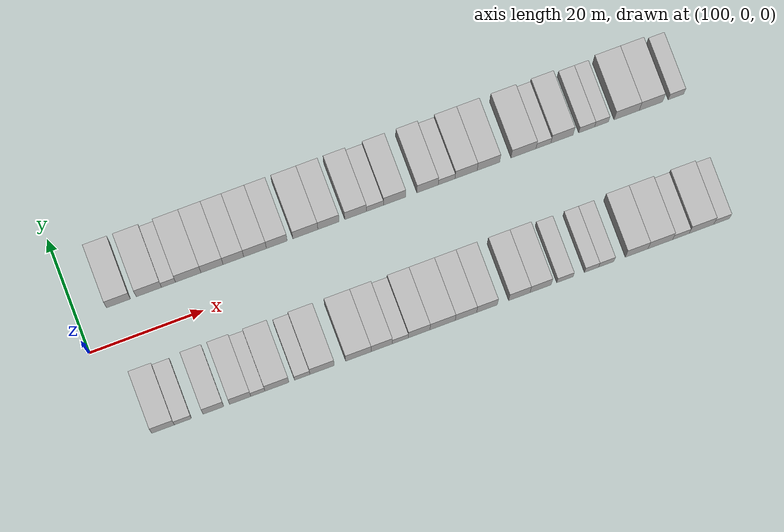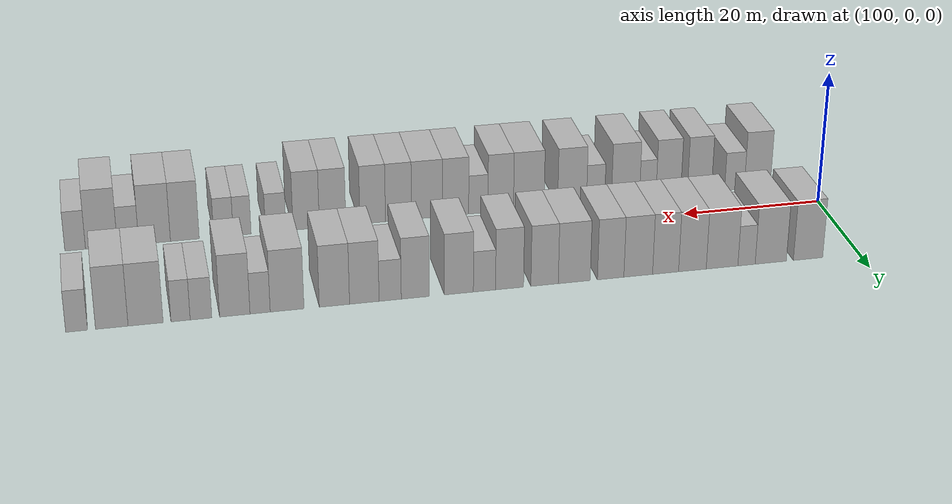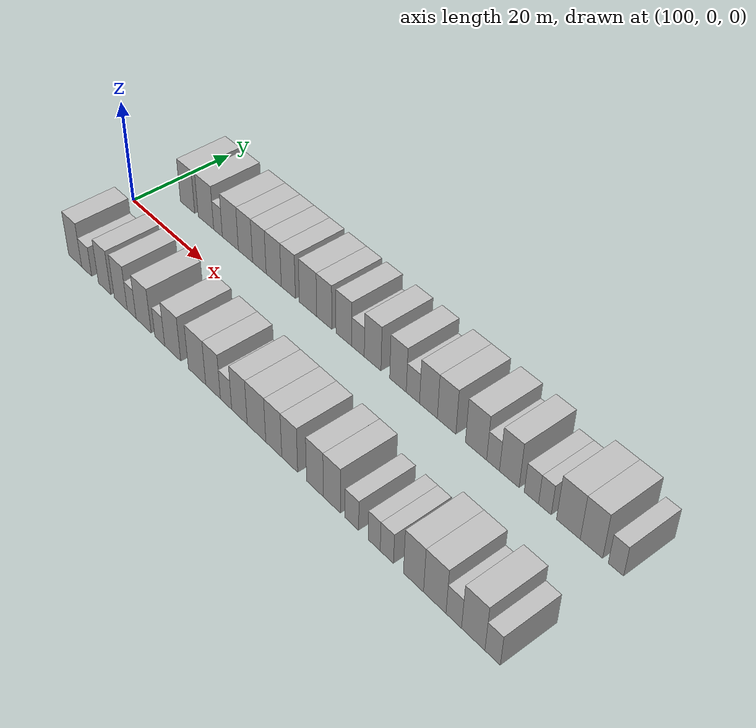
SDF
<sdf version="1.6">
 <world name="default">
  <model name="building_26">
   <static>1</static>
   <pose>107.3547 11.0000 0 0.000000 0.000000 1.570796</pose>
   <link name="link">
    <pose>0 0 4.50 0 0 0</pose>
    <collision name="collision"><geometry><box><size>10.0000 4.1900 9.0000</size></box></geometry></collision>
    <visual name="visual">
     <cast_shadows>0</cast_shadows>
     <geometry><box><size>10.0000 4.1900 9.0000</size></box></geometry>
     <material>
      <script>
       <uri>model://HANNAS_wall/materials/scripts</uri>
       <uri>model://HANNAS_wall/materials/textures</uri>
       <name>vrc/HANNAS_wall</name>
      </script>
     </material>
    </visual>
   </link>
  </model>
  <model name="building_27">
   <static>1</static>
   <pose>112.6648 11.0000 0 0.000000 0.000000 1.570796</pose>
   <link name="link">
    <pose>0 0 4.50 0 0 0</pose>
    <collision name="collision"><geometry><box><size>10.0000 4.4302 9.0000</size></box></geometry></collision>
    <visual name="visual">
     <cast_shadows>0</cast_shadows>
     <geometry><box><size>10.0000 4.4302 9.0000</size></box></geometry>
     <material>
      <script>
       <uri>model://HANNAS_wall/materials/scripts</uri>
       <uri>model://HANNAS_wall/materials/textures</uri>
       <name>vrc/HANNAS_wall</name>
      </script>
     </material>
    </visual>
   </link>
  </model>
  <model name="building_28">
   <static>1</static>
   <pose>116.1045 11.0000 0 0.000000 0.000000 1.570796</pose>
   <link name="link">
    <pose>0 0 3.00 0 0 0</pose>
    <collision name="collision"><geometry><box><size>10.0000 2.4492 6.0000</size></box></geometry></collision>
    <visual name="visual">
     <cast_shadows>0</cast_shadows>
     <geometry><box><size>10.0000 2.4492 6.0000</size></box></geometry>
     <material>
      <script>
       <uri>model://HANNAS_wall/materials/scripts</uri>
       <uri>model://HANNAS_wall/materials/textures</uri>
       <name>vrc/HANNAS_wall</name>
      </script>
     </material>
    </visual>
   </link>
  </model>
  <model name="building_29">
   <static>1</static>
   <pose>119.5563 11.0000 0 0.000000 0.000000 1.570796</pose>
   <link name="link">
    <pose>0 0 4.50 0 0 0</pose>
    <collision name="collision"><geometry><box><size>10.0000 4.4545 9.0000</size></box></geometry></collision>
    <visual name="visual">
     <cast_shadows>0</cast_shadows>
     <geometry><box><size>10.0000 4.4545 9.0000</size></box></geometry>
     <material>
      <script>
       <uri>model://HANNAS_wall/materials/scripts</uri>
       <uri>model://HANNAS_wall/materials/textures</uri>
       <name>vrc/HANNAS_wall</name>
      </script>
     </material>
    </visual>
   </link>
  </model>
  <model name="building_30">
   <static>1</static>
   <pose>123.7197 11.0000 0 0.000000 0.000000 1.570796</pose>
   <link name="link">
    <pose>0 0 4.50 0 0 0</pose>
    <collision name="collision"><geometry><box><size>10.0000 3.8723 9.0000</size></box></geometry></collision>
    <visual name="visual">
     <cast_shadows>0</cast_shadows>
     <geometry><box><size>10.0000 3.8723 9.0000</size></box></geometry>
     <material>
      <script>
       <uri>model://HANNAS_wall/materials/scripts</uri>
       <uri>model://HANNAS_wall/materials/textures</uri>
       <name>vrc/HANNAS_wall</name>
      </script>
     </material>
    </visual>
   </link>
  </model>
  <model name="building_31">
   <static>1</static>
   <pose>127.4697 11.0000 0 0.000000 0.000000 1.570796</pose>
   <link name="link">
    <pose>0 0 4.50 0 0 0</pose>
    <collision name="collision"><geometry><box><size>10.0000 3.6276 9.0000</size></box></geometry></collision>
    <visual name="visual">
     <cast_shadows>0</cast_shadows>
     <geometry><box><size>10.0000 3.6276 9.0000</size></box></geometry>
     <material>
      <script>
       <uri>model://HANNAS_wall/materials/scripts</uri>
       <uri>model://HANNAS_wall/materials/textures</uri>
       <name>vrc/HANNAS_wall</name>
      </script>
     </material>
    </visual>
   </link>
  </model>
  <model name="building_32">
   <static>1</static>
   <pose>131.2735 11.0000 0 0.000000 0.000000 1.570796</pose>
   <link name="link">
    <pose>0 0 4.50 0 0 0</pose>
    <collision name="collision"><geometry><box><size>10.0000 3.9799 9.0000</size></box></geometry></collision>
    <visual name="visual">
     <cast_shadows>0</cast_shadows>
     <geometry><box><size>10.0000 3.9799 9.0000</size></box></geometry>
     <material>
      <script>
       <uri>model://HANNAS_wall/materials/scripts</uri>
       <uri>model://HANNAS_wall/materials/textures</uri>
       <name>vrc/HANNAS_wall</name>
      </script>
     </material>
    </visual>
   </link>
  </model>
  <model name="building_33">
   <static>1</static>
   <pose>135.0868 11.0000 0 0.000000 0.000000 1.570796</pose>
   <link name="link">
    <pose>0 0 4.50 0 0 0</pose>
    <collision name="collision"><geometry><box><size>10.0000 3.6468 9.0000</size></box></geometry></collision>
    <visual name="visual">
     <cast_shadows>0</cast_shadows>
     <geometry><box><size>10.0000 3.6468 9.0000</size></box></geometry>
     <material>
      <script>
       <uri>model://HANNAS_wall/materials/scripts</uri>
       <uri>model://HANNAS_wall/materials/textures</uri>
       <name>vrc/HANNAS_wall</name>
      </script>
     </material>
    </visual>
   </link>
  </model>
  <model name="building_34">
   <static>1</static>
   <pose>140.0975 11.0000 0 0.000000 0.000000 1.570796</pose>
   <link name="link">
    <pose>0 0 4.50 0 0 0</pose>
    <collision name="collision"><geometry><box><size>10.0000 4.3745 9.0000</size></box></geometry></collision>
    <visual name="visual">
     <cast_shadows>0</cast_shadows>
     <geometry><box><size>10.0000 4.3745 9.0000</size></box></geometry>
     <material>
      <script>
       <uri>model://HANNAS_wall/materials/scripts</uri>
       <uri>model://HANNAS_wall/materials/textures</uri>
       <name>vrc/HANNAS_wall</name>
      </script>
     </material>
    </visual>
   </link>
  </model>
  <model name="building_35">
   <static>1</static>
   <pose>144.1498 11.0000 0 0.000000 0.000000 1.570796</pose>
   <link name="link">
    <pose>0 0 4.50 0 0 0</pose>
    <collision name="collision"><geometry><box><size>10.0000 3.7302 9.0000</size></box></geometry></collision>
    <visual name="visual">
     <cast_shadows>0</cast_shadows>
     <geometry><box><size>10.0000 3.7302 9.0000</size></box></geometry>
     <material>
      <script>
       <uri>model://HANNAS_wall/materials/scripts</uri>
       <uri>model://HANNAS_wall/materials/textures</uri>
       <name>vrc/HANNAS_wall</name>
      </script>
     </material>
    </visual>
   </link>
  </model>
  <model name="building_36">
   <static>1</static>
   <pose>148.9083 11.0000 0 0.000000 0.000000 1.570796</pose>
   <link name="link">
    <pose>0 0 4.50 0 0 0</pose>
    <collision name="collision"><geometry><box><size>10.0000 3.7869 9.0000</size></box></geometry></collision>
    <visual name="visual">
     <cast_shadows>0</cast_shadows>
     <geometry><box><size>10.0000 3.7869 9.0000</size></box></geometry>
     <material>
      <script>
       <uri>model://HANNAS_wall/materials/scripts</uri>
       <uri>model://HANNAS_wall/materials/textures</uri>
       <name>vrc/HANNAS_wall</name>
      </script>
     </material>
    </visual>
   </link>
  </model>
  <model name="building_37">
   <static>1</static>
   <pose>152.3015 11.0000 0 0.000000 0.000000 1.570796</pose>
   <link name="link">
    <pose>0 0 3.00 0 0 0</pose>
    <collision name="collision"><geometry><box><size>10.0000 2.9994 6.0000</size></box></geometry></collision>
    <visual name="visual">
     <cast_shadows>0</cast_shadows>
     <geometry><box><size>10.0000 2.9994 6.0000</size></box></geometry>
     <material>
      <script>
       <uri>model://HANNAS_wall/materials/scripts</uri>
       <uri>model://HANNAS_wall/materials/textures</uri>
       <name>vrc/HANNAS_wall</name>
      </script>
     </material>
    </visual>
   </link>
  </model>
  <model name="building_38">
   <static>1</static>
   <pose>155.7456 11.0000 0 0.000000 0.000000 1.570796</pose>
   <link name="link">
    <pose>0 0 4.50 0 0 0</pose>
    <collision name="collision"><geometry><box><size>10.0000 3.8888 9.0000</size></box></geometry></collision>
    <visual name="visual">
     <cast_shadows>0</cast_shadows>
     <geometry><box><size>10.0000 3.8888 9.0000</size></box></geometry>
     <material>
      <script>
       <uri>model://HANNAS_wall/materials/scripts</uri>
       <uri>model://HANNAS_wall/materials/textures</uri>
       <name>vrc/HANNAS_wall</name>
      </script>
     </material>
    </visual>
   </link>
  </model>
  <model name="building_39">
   <static>1</static>
   <pose>161.5662 11.0000 0 0.000000 0.000000 1.570796</pose>
   <link name="link">
    <pose>0 0 4.50 0 0 0</pose>
    <collision name="collision"><geometry><box><size>10.0000 3.7523 9.0000</size></box></geometry></collision>
    <visual name="visual">
     <cast_shadows>0</cast_shadows>
     <geometry><box><size>10.0000 3.7523 9.0000</size></box></geometry>
     <material>
      <script>
       <uri>model://HANNAS_wall/materials/scripts</uri>
       <uri>model://HANNAS_wall/materials/textures</uri>
       <name>vrc/HANNAS_wall</name>
      </script>
     </material>
    </visual>
   </link>
  </model>
  <model name="building_40">
   <static>1</static>
   <pose>164.9139 11.0000 0 0.000000 0.000000 1.570796</pose>
   <link name="link">
    <pose>0 0 3.00 0 0 0</pose>
    <collision name="collision"><geometry><box><size>10.0000 2.9432 6.0000</size></box></geometry></collision>
    <visual name="visual">
     <cast_shadows>0</cast_shadows>
     <geometry><box><size>10.0000 2.9432 6.0000</size></box></geometry>
     <material>
      <script>
       <uri>model://HANNAS_wall/materials/scripts</uri>
       <uri>model://HANNAS_wall/materials/textures</uri>
       <name>vrc/HANNAS_wall</name>
      </script>
     </material>
    </visual>
   </link>
  </model>
  <model name="building_41">
   <static>1</static>
   <pose>168.3362 11.0000 0 0.000000 0.000000 1.570796</pose>
   <link name="link">
    <pose>0 0 4.50 0 0 0</pose>
    <collision name="collision"><geometry><box><size>10.0000 3.9013 9.0000</size></box></geometry></collision>
    <visual name="visual">
     <cast_shadows>0</cast_shadows>
     <geometry><box><size>10.0000 3.9013 9.0000</size></box></geometry>
     <material>
      <script>
       <uri>model://HANNAS_wall/materials/scripts</uri>
       <uri>model://HANNAS_wall/materials/textures</uri>
       <name>vrc/HANNAS_wall</name>
      </script>
     </material>
    </visual>
   </link>
  </model>
  <model name="building_42">
   <static>1</static>
   <pose>172.2730 11.0000 0 0.000000 0.000000 1.570796</pose>
   <link name="link">
    <pose>0 0 4.50 0 0 0</pose>
    <collision name="collision"><geometry><box><size>10.0000 3.9724 9.0000</size></box></geometry></collision>
    <visual name="visual">
     <cast_shadows>0</cast_shadows>
     <geometry><box><size>10.0000 3.9724 9.0000</size></box></geometry>
     <material>
      <script>
       <uri>model://HANNAS_wall/materials/scripts</uri>
       <uri>model://HANNAS_wall/materials/textures</uri>
       <name>vrc/HANNAS_wall</name>
      </script>
     </material>
    </visual>
   </link>
  </model>
  <model name="building_43">
   <static>1</static>
   <pose>178.4589 11.0000 0 0.000000 0.000000 1.570796</pose>
   <link name="link">
    <pose>0 0 4.50 0 0 0</pose>
    <collision name="collision"><geometry><box><size>10.0000 4.3993 9.0000</size></box></geometry></collision>
    <visual name="visual">
     <cast_shadows>0</cast_shadows>
     <geometry><box><size>10.0000 4.3993 9.0000</size></box></geometry>
     <material>
      <script>
       <uri>model://HANNAS_wall/materials/scripts</uri>
       <uri>model://HANNAS_wall/materials/textures</uri>
       <name>vrc/HANNAS_wall</name>
      </script>
     </material>
    </visual>
   </link>
  </model>
  <model name="building_44">
   <static>1</static>
   <pose>181.9692 11.0000 0 0.000000 0.000000 1.570796</pose>
   <link name="link">
    <pose>0 0 3.00 0 0 0</pose>
    <collision name="collision"><geometry><box><size>10.0000 2.6214 6.0000</size></box></geometry></collision>
    <visual name="visual">
     <cast_shadows>0</cast_shadows>
     <geometry><box><size>10.0000 2.6214 6.0000</size></box></geometry>
     <material>
      <script>
       <uri>model://HANNAS_wall/materials/scripts</uri>
       <uri>model://HANNAS_wall/materials/textures</uri>
       <name>vrc/HANNAS_wall</name>
      </script>
     </material>
    </visual>
   </link>
  </model>
  <model name="building_45">
   <static>1</static>
   <pose>185.2407 11.0000 0 0.000000 0.000000 1.570796</pose>
   <link name="link">
    <pose>0 0 4.50 0 0 0</pose>
    <collision name="collision"><geometry><box><size>10.0000 3.9215 9.0000</size></box></geometry></collision>
    <visual name="visual">
     <cast_shadows>0</cast_shadows>
     <geometry><box><size>10.0000 3.9215 9.0000</size></box></geometry>
     <material>
      <script>
       <uri>model://HANNAS_wall/materials/scripts</uri>
       <uri>model://HANNAS_wall/materials/textures</uri>
       <name>vrc/HANNAS_wall</name>
      </script>
     </material>
    </visual>
   </link>
  </model>
  <model name="building_46">
   <static>1</static>
   <pose>189.5925 11.0000 0 0.000000 0.000000 1.570796</pose>
   <link name="link">
    <pose>0 0 3.00 0 0 0</pose>
    <collision name="collision"><geometry><box><size>10.0000 2.7821 6.0000</size></box></geometry></collision>
    <visual name="visual">
     <cast_shadows>0</cast_shadows>
     <geometry><box><size>10.0000 2.7821 6.0000</size></box></geometry>
     <material>
      <script>
       <uri>model://HANNAS_wall/materials/scripts</uri>
       <uri>model://HANNAS_wall/materials/textures</uri>
       <name>vrc/HANNAS_wall</name>
      </script>
     </material>
    </visual>
   </link>
  </model>
  <model name="building_47">
   <static>1</static>
   <pose>192.2112 11.0000 0 0.000000 0.000000 1.570796</pose>
   <link name="link">
    <pose>0 0 3.00 0 0 0</pose>
    <collision name="collision"><geometry><box><size>10.0000 2.4554 6.0000</size></box></geometry></collision>
    <visual name="visual">
     <cast_shadows>0</cast_shadows>
     <geometry><box><size>10.0000 2.4554 6.0000</size></box></geometry>
     <material>
      <script>
       <uri>model://HANNAS_wall/materials/scripts</uri>
       <uri>model://HANNAS_wall/materials/textures</uri>
       <name>vrc/HANNAS_wall</name>
      </script>
     </material>
    </visual>
   </link>
  </model>
  <model name="building_48">
   <static>1</static>
   <pose>196.6661 11.0000 0 0.000000 0.000000 1.570796</pose>
   <link name="link">
    <pose>0 0 4.50 0 0 0</pose>
    <collision name="collision"><geometry><box><size>10.0000 4.4544 9.0000</size></box></geometry></collision>
    <visual name="visual">
     <cast_shadows>0</cast_shadows>
     <geometry><box><size>10.0000 4.4544 9.0000</size></box></geometry>
     <material>
      <script>
       <uri>model://HANNAS_wall/materials/scripts</uri>
       <uri>model://HANNAS_wall/materials/textures</uri>
       <name>vrc/HANNAS_wall</name>
      </script>
     </material>
    </visual>
   </link>
  </model>
  <model name="building_49">
   <static>1</static>
   <pose>200.9505 11.0000 0 0.000000 0.000000 1.570796</pose>
   <link name="link">
    <pose>0 0 4.50 0 0 0</pose>
    <collision name="collision"><geometry><box><size>10.0000 4.1144 9.0000</size></box></geometry></collision>
    <visual name="visual">
     <cast_shadows>0</cast_shadows>
     <geometry><box><size>10.0000 4.1144 9.0000</size></box></geometry>
     <material>
      <script>
       <uri>model://HANNAS_wall/materials/scripts</uri>
       <uri>model://HANNAS_wall/materials/textures</uri>
       <name>vrc/HANNAS_wall</name>
      </script>
     </material>
    </visual>
   </link>
  </model>
  <model name="building_50">
   <static>1</static>
   <pose>205.3831 11.0000 0 0.000000 0.000000 1.570796</pose>
   <link name="link">
    <pose>0 0 3.00 0 0 0</pose>
    <collision name="collision"><geometry><box><size>10.0000 2.7508 6.0000</size></box></geometry></collision>
    <visual name="visual">
     <cast_shadows>0</cast_shadows>
     <geometry><box><size>10.0000 2.7508 6.0000</size></box></geometry>
     <material>
      <script>
       <uri>model://HANNAS_wall/materials/scripts</uri>
       <uri>model://HANNAS_wall/materials/textures</uri>
       <name>vrc/HANNAS_wall</name>
      </script>
     </material>
    </visual>
   </link>
  </model>
  <model name="building_75">
   <static>1</static>
   <pose>107.0767 -11.0000 0 0.000000 0.000000 1.570796</pose>
   <link name="link">
    <pose>0 0 4.50 0 0 0</pose>
    <collision name="collision"><geometry><box><size>10.0000 3.9585 9.0000</size></box></geometry></collision>
    <visual name="visual">
     <cast_shadows>0</cast_shadows>
     <geometry><box><size>10.0000 3.9585 9.0000</size></box></geometry>
     <material>
      <script>
       <uri>model://HANNAS_wall/materials/scripts</uri>
       <uri>model://HANNAS_wall/materials/textures</uri>
       <name>vrc/HANNAS_wall</name>
      </script>
     </material>
    </visual>
   </link>
  </model>
  <model name="building_76">
   <static>1</static>
   <pose>110.5516 -11.0000 0 0.000000 0.000000 1.570796</pose>
   <link name="link">
    <pose>0 0 3.00 0 0 0</pose>
    <collision name="collision"><geometry><box><size>10.0000 2.9915 6.0000</size></box></geometry></collision>
    <visual name="visual">
     <cast_shadows>0</cast_shadows>
     <geometry><box><size>10.0000 2.9915 6.0000</size></box></geometry>
     <material>
      <script>
       <uri>model://HANNAS_wall/materials/scripts</uri>
       <uri>model://HANNAS_wall/materials/textures</uri>
       <name>vrc/HANNAS_wall</name>
      </script>
     </material>
    </visual>
   </link>
  </model>
  <model name="building_77">
   <static>1</static>
   <pose>115.8667 -11.0000 0 0.000000 0.000000 1.570796</pose>
   <link name="link">
    <pose>0 0 4.50 0 0 0</pose>
    <collision name="collision"><geometry><box><size>10.0000 3.6387 9.0000</size></box></geometry></collision>
    <visual name="visual">
     <cast_shadows>0</cast_shadows>
     <geometry><box><size>10.0000 3.6387 9.0000</size></box></geometry>
     <material>
      <script>
       <uri>model://HANNAS_wall/materials/scripts</uri>
       <uri>model://HANNAS_wall/materials/textures</uri>
       <name>vrc/HANNAS_wall</name>
      </script>
     </material>
    </visual>
   </link>
  </model>
  <model name="building_78">
   <static>1</static>
   <pose>120.5418 -11.0000 0 0.000000 0.000000 1.570796</pose>
   <link name="link">
    <pose>0 0 4.50 0 0 0</pose>
    <collision name="collision"><geometry><box><size>10.0000 3.7113 9.0000</size></box></geometry></collision>
    <visual name="visual">
     <cast_shadows>0</cast_shadows>
     <geometry><box><size>10.0000 3.7113 9.0000</size></box></geometry>
     <material>
      <script>
       <uri>model://HANNAS_wall/materials/scripts</uri>
       <uri>model://HANNAS_wall/materials/textures</uri>
       <name>vrc/HANNAS_wall</name>
      </script>
     </material>
    </visual>
   </link>
  </model>
  <model name="building_79">
   <static>1</static>
   <pose>123.6278 -11.0000 0 0.000000 0.000000 1.570796</pose>
   <link name="link">
    <pose>0 0 3.00 0 0 0</pose>
    <collision name="collision"><geometry><box><size>10.0000 2.4608 6.0000</size></box></geometry></collision>
    <visual name="visual">
     <cast_shadows>0</cast_shadows>
     <geometry><box><size>10.0000 2.4608 6.0000</size></box></geometry>
     <material>
      <script>
       <uri>model://HANNAS_wall/materials/scripts</uri>
       <uri>model://HANNAS_wall/materials/textures</uri>
       <name>vrc/HANNAS_wall</name>
      </script>
     </material>
    </visual>
   </link>
  </model>
  <model name="building_80">
   <static>1</static>
   <pose>126.9496 -11.0000 0 0.000000 0.000000 1.570796</pose>
   <link name="link">
    <pose>0 0 4.50 0 0 0</pose>
    <collision name="collision"><geometry><box><size>10.0000 4.1827 9.0000</size></box></geometry></collision>
    <visual name="visual">
     <cast_shadows>0</cast_shadows>
     <geometry><box><size>10.0000 4.1827 9.0000</size></box></geometry>
     <material>
      <script>
       <uri>model://HANNAS_wall/materials/scripts</uri>
       <uri>model://HANNAS_wall/materials/textures</uri>
       <name>vrc/HANNAS_wall</name>
      </script>
     </material>
    </visual>
   </link>
  </model>
  <model name="building_81">
   <static>1</static>
   <pose>131.3849 -11.0000 0 0.000000 0.000000 1.570796</pose>
   <link name="link">
    <pose>0 0 3.00 0 0 0</pose>
    <collision name="collision"><geometry><box><size>10.0000 2.6879 6.0000</size></box></geometry></collision>
    <visual name="visual">
     <cast_shadows>0</cast_shadows>
     <geometry><box><size>10.0000 2.6879 6.0000</size></box></geometry>
     <material>
      <script>
       <uri>model://HANNAS_wall/materials/scripts</uri>
       <uri>model://HANNAS_wall/materials/textures</uri>
       <name>vrc/HANNAS_wall</name>
      </script>
     </material>
    </visual>
   </link>
  </model>
  <model name="building_82">
   <static>1</static>
   <pose>134.8555 -11.0000 0 0.000000 0.000000 1.570796</pose>
   <link name="link">
    <pose>0 0 4.50 0 0 0</pose>
    <collision name="collision"><geometry><box><size>10.0000 4.2533 9.0000</size></box></geometry></collision>
    <visual name="visual">
     <cast_shadows>0</cast_shadows>
     <geometry><box><size>10.0000 4.2533 9.0000</size></box></geometry>
     <material>
      <script>
       <uri>model://HANNAS_wall/materials/scripts</uri>
       <uri>model://HANNAS_wall/materials/textures</uri>
       <name>vrc/HANNAS_wall</name>
      </script>
     </material>
    </visual>
   </link>
  </model>
  <model name="building_83">
   <static>1</static>
   <pose>141.2164 -11.0000 0 0.000000 0.000000 1.570796</pose>
   <link name="link">
    <pose>0 0 4.50 0 0 0</pose>
    <collision name="collision"><geometry><box><size>10.0000 4.4686 9.0000</size></box></geometry></collision>
    <visual name="visual">
     <cast_shadows>0</cast_shadows>
     <geometry><box><size>10.0000 4.4686 9.0000</size></box></geometry>
     <material>
      <script>
       <uri>model://HANNAS_wall/materials/scripts</uri>
       <uri>model://HANNAS_wall/materials/textures</uri>
       <name>vrc/HANNAS_wall</name>
      </script>
     </material>
    </visual>
   </link>
  </model>
  <model name="building_84">
   <static>1</static>
   <pose>145.3041 -11.0000 0 0.000000 0.000000 1.570796</pose>
   <link name="link">
    <pose>0 0 4.50 0 0 0</pose>
    <collision name="collision"><geometry><box><size>10.0000 3.7066 9.0000</size></box></geometry></collision>
    <visual name="visual">
     <cast_shadows>0</cast_shadows>
     <geometry><box><size>10.0000 3.7066 9.0000</size></box></geometry>
     <material>
      <script>
       <uri>model://HANNAS_wall/materials/scripts</uri>
       <uri>model://HANNAS_wall/materials/textures</uri>
       <name>vrc/HANNAS_wall</name>
      </script>
     </material>
    </visual>
   </link>
  </model>
  <model name="building_85">
   <static>1</static>
   <pose>148.5587 -11.0000 0 0.000000 0.000000 1.570796</pose>
   <link name="link">
    <pose>0 0 3.00 0 0 0</pose>
    <collision name="collision"><geometry><box><size>10.0000 2.8027 6.0000</size></box></geometry></collision>
    <visual name="visual">
     <cast_shadows>0</cast_shadows>
     <geometry><box><size>10.0000 2.8027 6.0000</size></box></geometry>
     <material>
      <script>
       <uri>model://HANNAS_wall/materials/scripts</uri>
       <uri>model://HANNAS_wall/materials/textures</uri>
       <name>vrc/HANNAS_wall</name>
      </script>
     </material>
    </visual>
   </link>
  </model>
  <model name="building_86">
   <static>1</static>
   <pose>151.8509 -11.0000 0 0.000000 0.000000 1.570796</pose>
   <link name="link">
    <pose>0 0 4.50 0 0 0</pose>
    <collision name="collision"><geometry><box><size>10.0000 3.7818 9.0000</size></box></geometry></collision>
    <visual name="visual">
     <cast_shadows>0</cast_shadows>
     <geometry><box><size>10.0000 3.7818 9.0000</size></box></geometry>
     <material>
      <script>
       <uri>model://HANNAS_wall/materials/scripts</uri>
       <uri>model://HANNAS_wall/materials/textures</uri>
       <name>vrc/HANNAS_wall</name>
      </script>
     </material>
    </visual>
   </link>
  </model>
  <model name="building_87">
   <static>1</static>
   <pose>155.9589 -11.0000 0 0.000000 0.000000 1.570796</pose>
   <link name="link">
    <pose>0 0 4.50 0 0 0</pose>
    <collision name="collision"><geometry><box><size>10.0000 4.4341 9.0000</size></box></geometry></collision>
    <visual name="visual">
     <cast_shadows>0</cast_shadows>
     <geometry><box><size>10.0000 4.4341 9.0000</size></box></geometry>
     <material>
      <script>
       <uri>model://HANNAS_wall/materials/scripts</uri>
       <uri>model://HANNAS_wall/materials/textures</uri>
       <name>vrc/HANNAS_wall</name>
      </script>
     </material>
    </visual>
   </link>
  </model>
  <model name="building_88">
   <static>1</static>
   <pose>160.0464 -11.0000 0 0.000000 0.000000 1.570796</pose>
   <link name="link">
    <pose>0 0 4.50 0 0 0</pose>
    <collision name="collision"><geometry><box><size>10.0000 3.7410 9.0000</size></box></geometry></collision>
    <visual name="visual">
     <cast_shadows>0</cast_shadows>
     <geometry><box><size>10.0000 3.7410 9.0000</size></box></geometry>
     <material>
      <script>
       <uri>model://HANNAS_wall/materials/scripts</uri>
       <uri>model://HANNAS_wall/materials/textures</uri>
       <name>vrc/HANNAS_wall</name>
      </script>
     </material>
    </visual>
   </link>
  </model>
  <model name="building_89">
   <static>1</static>
   <pose>163.7334 -11.0000 0 0.000000 0.000000 1.570796</pose>
   <link name="link">
    <pose>0 0 4.50 0 0 0</pose>
    <collision name="collision"><geometry><box><size>10.0000 3.6329 9.0000</size></box></geometry></collision>
    <visual name="visual">
     <cast_shadows>0</cast_shadows>
     <geometry><box><size>10.0000 3.6329 9.0000</size></box></geometry>
     <material>
      <script>
       <uri>model://HANNAS_wall/materials/scripts</uri>
       <uri>model://HANNAS_wall/materials/textures</uri>
       <name>vrc/HANNAS_wall</name>
      </script>
     </material>
    </visual>
   </link>
  </model>
  <model name="building_90">
   <static>1</static>
   <pose>169.4196 -11.0000 0 0.000000 0.000000 1.570796</pose>
   <link name="link">
    <pose>0 0 4.50 0 0 0</pose>
    <collision name="collision"><geometry><box><size>10.0000 3.7395 9.0000</size></box></geometry></collision>
    <visual name="visual">
     <cast_shadows>0</cast_shadows>
     <geometry><box><size>10.0000 3.7395 9.0000</size></box></geometry>
     <material>
      <script>
       <uri>model://HANNAS_wall/materials/scripts</uri>
       <uri>model://HANNAS_wall/materials/textures</uri>
       <name>vrc/HANNAS_wall</name>
      </script>
     </material>
    </visual>
   </link>
  </model>
  <model name="building_91">
   <static>1</static>
   <pose>173.1419 -11.0000 0 0.000000 0.000000 1.570796</pose>
   <link name="link">
    <pose>0 0 4.50 0 0 0</pose>
    <collision name="collision"><geometry><box><size>10.0000 3.7050 9.0000</size></box></geometry></collision>
    <visual name="visual">
     <cast_shadows>0</cast_shadows>
     <geometry><box><size>10.0000 3.7050 9.0000</size></box></geometry>
     <material>
      <script>
       <uri>model://HANNAS_wall/materials/scripts</uri>
       <uri>model://HANNAS_wall/materials/textures</uri>
       <name>vrc/HANNAS_wall</name>
      </script>
     </material>
    </visual>
   </link>
  </model>
  <model name="building_92">
   <static>1</static>
   <pose>177.4290 -11.0000 0 0.000000 0.000000 1.570796</pose>
   <link name="link">
    <pose>0 0 3.00 0 0 0</pose>
    <collision name="collision"><geometry><box><size>10.0000 2.8692 6.0000</size></box></geometry></collision>
    <visual name="visual">
     <cast_shadows>0</cast_shadows>
     <geometry><box><size>10.0000 2.8692 6.0000</size></box></geometry>
     <material>
      <script>
       <uri>model://HANNAS_wall/materials/scripts</uri>
       <uri>model://HANNAS_wall/materials/textures</uri>
       <name>vrc/HANNAS_wall</name>
      </script>
     </material>
    </visual>
   </link>
  </model>
  <model name="building_93">
   <static>1</static>
   <pose>182.1079 -11.0000 0 0.000000 0.000000 1.570796</pose>
   <link name="link">
    <pose>0 0 3.00 0 0 0</pose>
    <collision name="collision"><geometry><box><size>10.0000 2.4886 6.0000</size></box></geometry></collision>
    <visual name="visual">
     <cast_shadows>0</cast_shadows>
     <geometry><box><size>10.0000 2.4886 6.0000</size></box></geometry>
     <material>
      <script>
       <uri>model://HANNAS_wall/materials/scripts</uri>
       <uri>model://HANNAS_wall/materials/textures</uri>
       <name>vrc/HANNAS_wall</name>
      </script>
     </material>
    </visual>
   </link>
  </model>
  <model name="building_94">
   <static>1</static>
   <pose>184.7044 -11.0000 0 0.000000 0.000000 1.570796</pose>
   <link name="link">
    <pose>0 0 3.00 0 0 0</pose>
    <collision name="collision"><geometry><box><size>10.0000 2.7045 6.0000</size></box></geometry></collision>
    <visual name="visual">
     <cast_shadows>0</cast_shadows>
     <geometry><box><size>10.0000 2.7045 6.0000</size></box></geometry>
     <material>
      <script>
       <uri>model://HANNAS_wall/materials/scripts</uri>
       <uri>model://HANNAS_wall/materials/textures</uri>
       <name>vrc/HANNAS_wall</name>
      </script>
     </material>
    </visual>
   </link>
  </model>
  <model name="building_95">
   <static>1</static>
   <pose>190.0407 -11.0000 0 0.000000 0.000000 1.570796</pose>
   <link name="link">
    <pose>0 0 4.50 0 0 0</pose>
    <collision name="collision"><geometry><box><size>10.0000 3.9680 9.0000</size></box></geometry></collision>
    <visual name="visual">
     <cast_shadows>0</cast_shadows>
     <geometry><box><size>10.0000 3.9680 9.0000</size></box></geometry>
     <material>
      <script>
       <uri>model://HANNAS_wall/materials/scripts</uri>
       <uri>model://HANNAS_wall/materials/textures</uri>
       <name>vrc/HANNAS_wall</name>
      </script>
     </material>
    </visual>
   </link>
  </model>
  <model name="building_96">
   <static>1</static>
   <pose>194.1928 -11.0000 0 0.000000 0.000000 1.570796</pose>
   <link name="link">
    <pose>0 0 4.50 0 0 0</pose>
    <collision name="collision"><geometry><box><size>10.0000 4.3362 9.0000</size></box></geometry></collision>
    <visual name="visual">
     <cast_shadows>0</cast_shadows>
     <geometry><box><size>10.0000 4.3362 9.0000</size></box></geometry>
     <material>
      <script>
       <uri>model://HANNAS_wall/materials/scripts</uri>
       <uri>model://HANNAS_wall/materials/textures</uri>
       <name>vrc/HANNAS_wall</name>
      </script>
     </material>
    </visual>
   </link>
  </model>
  <model name="building_97">
   <static>1</static>
   <pose>197.8208 -11.0000 0 0.000000 0.000000 1.570796</pose>
   <link name="link">
    <pose>0 0 3.00 0 0 0</pose>
    <collision name="collision"><geometry><box><size>10.0000 2.9197 6.0000</size></box></geometry></collision>
    <visual name="visual">
     <cast_shadows>0</cast_shadows>
     <geometry><box><size>10.0000 2.9197 6.0000</size></box></geometry>
     <material>
      <script>
       <uri>model://HANNAS_wall/materials/scripts</uri>
       <uri>model://HANNAS_wall/materials/textures</uri>
       <name>vrc/HANNAS_wall</name>
      </script>
     </material>
    </visual>
   </link>
  </model>
  <model name="building_98">
   <static>1</static>
   <pose>201.4444 -11.0000 0 0.000000 0.000000 1.570796</pose>
   <link name="link">
    <pose>0 0 4.50 0 0 0</pose>
    <collision name="collision"><geometry><box><size>10.0000 4.3275 9.0000</size></box></geometry></collision>
    <visual name="visual">
     <cast_shadows>0</cast_shadows>
     <geometry><box><size>10.0000 4.3275 9.0000</size></box></geometry>
     <material>
      <script>
       <uri>model://HANNAS_wall/materials/scripts</uri>
       <uri>model://HANNAS_wall/materials/textures</uri>
       <name>vrc/HANNAS_wall</name>
      </script>
     </material>
    </visual>
   </link>
  </model>
  <model name="building_99">
   <static>1</static>
   <pose>205.0043 -11.0000 0 0.000000 0.000000 1.570796</pose>
   <link name="link">
    <pose>0 0 3.00 0 0 0</pose>
    <collision name="collision"><geometry><box><size>10.0000 2.7924 6.0000</size></box></geometry></collision>
    <visual name="visual">
     <cast_shadows>0</cast_shadows>
     <geometry><box><size>10.0000 2.7924 6.0000</size></box></geometry>
     <material>
      <script>
       <uri>model://HANNAS_wall/materials/scripts</uri>
       <uri>model://HANNAS_wall/materials/textures</uri>
       <name>vrc/HANNAS_wall</name>
      </script>
     </material>
    </visual>
   </link>
  </model>
 </world>
</sdf>
